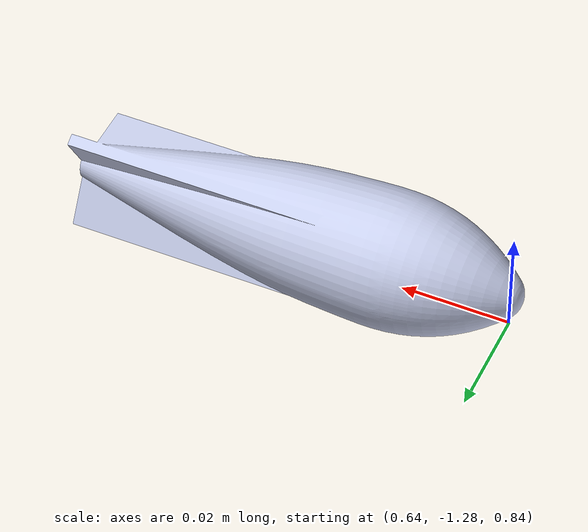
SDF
<sdf version='1.9'>
  <model name='torPEDO'>
    <link name='base_link'>
      <inertial>
        <pose>0 0 0 0 0 0</pose>
        <mass>0.001</mass>
        <inertia>
          <ixx>1e-06</ixx>
          <ixy>0</ixy>
          <ixz>0</ixz>
          <iyy>1e-06</iyy>
          <iyz>0</iyz>
          <izz>1e-06</izz>
        </inertia>
      </inertial>
      <collision name='base_link_collision'>
        <pose>0 0 0 0 0 0</pose>
        <geometry>
          <mesh>
            <scale>1 1 1</scale>
            <uri>model://torPEDO/meshes/base_link.STL</uri>
          </mesh>
        </geometry>
      </collision>
      <visual name='base_link_visual'>
        <pose>0 0 0 0 0 0</pose>
        <geometry>
          <mesh>
            <scale>1 1 1</scale>
            <uri>model://torPEDO/meshes/base_link.STL</uri>
          </mesh>
        </geometry>
        <material>
          <diffuse>0.792157 0.819608 0.933333 1</diffuse>
          <ambient>0.792157 0.819608 0.933333 1</ambient>
        </material>
      </visual>
    </link>
  </model>
</sdf>
